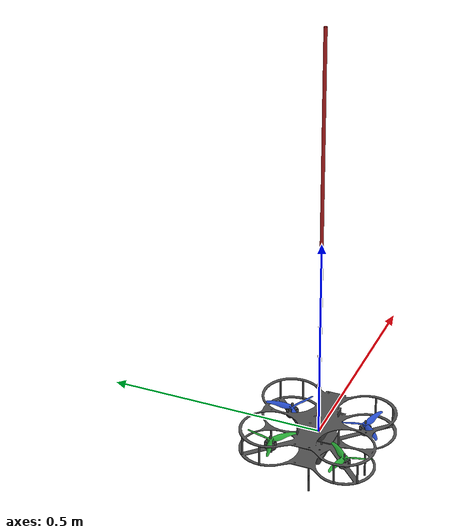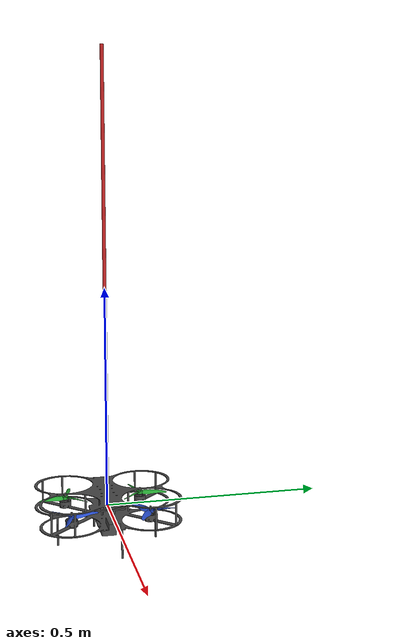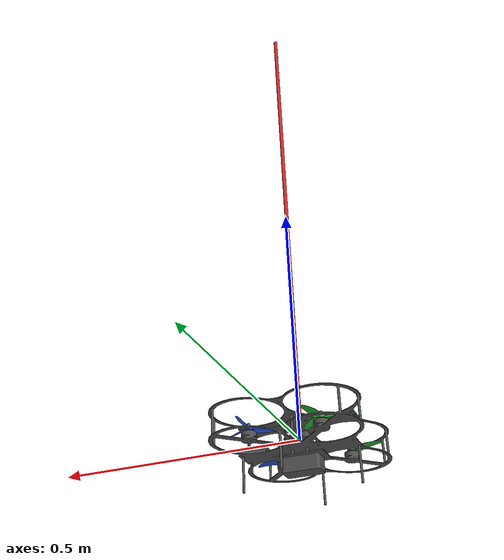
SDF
<sdf version='1.7'>
  <model name='danaus12_old'>
    <link name='base_link'>
      <inertial>
        <pose>0.003017 6e-06 0.024946 0 0 0</pose>
        <mass>0.67634104</mass>
        <inertia>
          <ixx>0.00320868</ixx>
          <ixy>0.00011707</ixy>
          <ixz>0.00004899</ixz>
          <iyy>0.00288707</iyy>
          <iyz>0.00006456</iyz>
          <izz>0.00495141</izz>
        </inertia>
      </inertial>
      <collision name='base_link_collision'>
        <pose>0 0 0 0 0 0</pose>
        <geometry>
          <box>
            <size>0.28 0.32 0.12</size>
          </box>
        </geometry>
        <surface>
          <contact>
            <ode>
              <min_depth>0.001</min_depth>
              <max_vel>0</max_vel>
            </ode>
          </contact>
          <friction>
            <ode/>
          </friction>
        </surface>
      </collision>
      <visual name='base_link_inertia_visual'>
        <pose>0 0 0 0 0 0</pose>
        <geometry>
          <mesh>
            <scale>1 1 1</scale>
            <uri>model://danaus12_old/meshes/base_link.stl</uri>
          </mesh>
        </geometry>
        <material>
          <script>
            <name>Gazebo/DarkGrey</name>
            <uri>file://media/materials/scripts/gazebo.material</uri>
          </script>
        </material>
      </visual>
      <gravity>1</gravity>
      <velocity_decay/>
    </link>

    <joint name='pendulum_joint' type='universal'>
      <pose relative_to='base_link'>-0.001995 0.000135 0.031659 0 0 0</pose>   <!-- NEEDED to set joint to be at CoM of drone -->
      <parent>base_link</parent>
      <child>pendulum</child>
      <axis1>
        <xyz>1 0 0</xyz>
        <limit>
          <lower>-3.14</lower>
          <upper>3.14</upper>
        </limit>
        <dynamics>
          <spring_reference>0</spring_reference>
          <spring_stiffness>0</spring_stiffness>
        </dynamics>
      </axis1>
      <axis2>
        <xyz>0 1 0</xyz>
        <limit>
          <lower>-3.14</lower>
          <upper>3.14</upper>
        </limit>
        <dynamics>
          <spring_reference>0</spring_reference>
          <spring_stiffness>0</spring_stiffness>
        </dynamics>
      </axis2>
     </joint>
    <link name='pendulum'>
      <pose>-0.001995 0.000135 0.531659 0 0 0</pose>  <!-- Needed to get CoM of pendulum link state -->
      <inertial>
        <!-- This works -->
        <pose> 0 0 0 0 0 0</pose>   <!-- This is about the pose of the link itself. -->
        <mass>0.03133884</mass>
        <inertia>
          <ixx>0.00261178</ixx>
          <ixy>0</ixy>
          <ixz>0</ixz>
          <iyy>0.00261178</iyy>
          <iyz>0</iyz>
          <izz>0.00000042</izz>
        </inertia>
      </inertial>
      <collision name='pendulum_collision'>
        <pose>0 0 0 0 0 0</pose>
        <geometry>
          <mesh>
            <scale>1 1 1</scale>
            <uri>model://danaus12_old/meshes/penulum.stl</uri>
          </mesh>
        </geometry>
        <surface>
          <contact>
            <ode/>
          </contact>
          <friction>
            <ode/>
          </friction>
        </surface>
      </collision>
      <visual name='pendulum_visual'>
        <pose>0 0 0 0 0 0</pose>
        <geometry>
          <mesh>
            <scale>1 1 1</scale>
            <uri>model://danaus12_old/meshes/penulum.stl</uri>
          </mesh>
        </geometry>
        <material>
          <script>
            <name>Gazebo/Red</name>
            <uri>file://media/materials/scripts/gazebo.material</uri>
          </script>
        </material>
      </visual>
      <gravity>0</gravity>
      <velocity_decay/>
    </link>

    <joint name='/imu_joint' type='revolute'>
      <pose relative_to='base_link'>0 0 0 0 0 0</pose>
      <child>/imu_link</child>
      <parent>base_link</parent>
      <axis>
        <xyz>1 0 0</xyz>
        <limit>
          <lower>0</lower>
          <upper>0</upper>
          <effort>0</effort>
          <velocity>0</velocity>
        </limit>
        <dynamics>
          <spring_reference>0</spring_reference>
          <spring_stiffness>0</spring_stiffness>
        </dynamics>
        <use_parent_model_frame>1</use_parent_model_frame>
      </axis>
    </joint>
    <link name='/imu_link'>
      <pose relative_to='/imu_joint'>0 0 0 0 0 0</pose>
      <inertial>
        <pose>0 0 0 0 0 0</pose>
        <mass>0.015</mass>imu
        <inertia>
          <ixx>1e-05</ixx>
          <ixy>0</ixy>
          <ixz>0</ixz>
          <iyy>1e-05</iyy>
          <iyz>0</iyz>
          <izz>1e-05</izz>
        </inertia>
      </inertial>
    </link>
    <joint name='rotor_0_joint' type='revolute'>
      <pose relative_to='base_link'>0.063592 -0.088805 0.003519 0 0 0</pose>
      <parent>base_link</parent>
      <child>rotor_0</child>
      <axis>
        <xyz>0 0 1</xyz>
        <limit>
          <lower>-1e+16</lower>
          <upper>1e+16</upper>
        </limit>
        <dynamics>
          <spring_reference>0</spring_reference>
          <spring_stiffness>0</spring_stiffness>
        </dynamics>
      </axis>
    </joint>
    <link name='rotor_0'>
      <pose relative_to='rotor_0_joint'>0 0 0 0 0 0</pose>
      <inertial>
        <pose>0 -3e-06 -0.001827 0 0 0</pose>
        <mass>0.0032761</mass>
        <inertia>
          <ixx>1.0527e-06</ixx>
          <ixy>-2.4429e-10</ixy>
          <ixz>-1.7374e-11</ixz>
          <iyy>1.0527e-06</iyy>
          <iyz>1.5733e-11</iyz>
          <izz>2.0815e-06</izz>
        </inertia>
      </inertial>
      <collision name='rotor_0_collision'>
        <pose>0 0 0 0 0 0</pose>
        <geometry>
          <cylinder>
            <length>0.005</length>
            <radius>0.064</radius>
          </cylinder>
        </geometry>
        <surface>
          <contact>
            <ode/>
          </contact>
          <friction>
            <ode/>
          </friction>
        </surface>
      </collision>
      <visual name='rotor_0_visual'>
        <pose>0 0 0 0 0 0</pose>
        <geometry>
          <mesh>
            <scale>1 1 1</scale>
            <uri>model://danaus12_old/meshes/rotor_0.stl</uri>
          </mesh>
        </geometry>
        <material>
          <script>
            <name>Gazebo/Blue</name>
            <uri>file://media/materials/scripts/gazebo.material</uri>
          </script>
        </material>
      </visual>
    </link>
    <joint name='rotor_1_joint' type='revolute'>
      <pose relative_to='base_link'>-0.071008 0.088795 0.003519 0 0 0</pose>
      <parent>base_link</parent>
      <child>rotor_1</child>
      <axis>
        <xyz>0 0 1</xyz>
        <limit>
          <lower>-1e+16</lower>
          <upper>1e+16</upper>
        </limit>
        <dynamics>
          <spring_reference>0</spring_reference>
          <spring_stiffness>0</spring_stiffness>
        </dynamics>
      </axis>
    </joint>
    <link name='rotor_1'>
      <pose relative_to='rotor_1_joint'>0 0 0 0 0 0</pose>
      <inertial>
        <pose>3e-06 3e-06 -0.001827 0 0 0</pose>
        <mass>0.0032761</mass>
        <inertia>
          <ixx>1.053e-06</ixx>
          <ixy>1.0257e-10</ixy>
          <ixz>-1.0673e-11</ixz>
          <iyy>1.0527e-06</iyy>
          <iyz>-8.4164e-12</iyz>
          <izz>2.0817e-06</izz>
        </inertia>
      </inertial>
      <collision name='rotor_1_collision'>
        <pose>0 0 0 0 0 0</pose>
        <geometry>
          <cylinder>
            <length>0.005</length>
            <radius>0.064</radius>
          </cylinder>
        </geometry>
        <surface>
          <contact>
            <ode/>
          </contact>
          <friction>
            <ode/>
          </friction>
        </surface>
      </collision>
      <visual name='rotor_1_visual'>
        <pose>0 0 0 0 0 0</pose>
        <geometry>
          <mesh>
            <scale>1 1 1</scale>
            <uri>model://danaus12_old/meshes/rotor_1.stl</uri>
          </mesh>
        </geometry>
        <material>
          <script>
            <name>Gazebo/Green</name>
            <uri>file://media/materials/scripts/gazebo.material</uri>
          </script>
        </material>
      </visual>
      <gravity>1</gravity>
      <velocity_decay/>
    </link>
    <joint name='rotor_2_joint' type='revolute'>
      <pose relative_to='base_link'>0.063592 0.088795 0.003519 0 0 0</pose>
      <parent>base_link</parent>
      <child>rotor_2</child>
      <axis>
        <xyz>0 0 1</xyz>
        <limit>
          <lower>-1e+16</lower>
          <upper>1e+16</upper>
        </limit>
        <dynamics>
          <spring_reference>0</spring_reference>
          <spring_stiffness>0</spring_stiffness>
        </dynamics>
      </axis>
    </joint>
    <link name='rotor_2'>
      <pose relative_to='rotor_2_joint'>0 0 0 0 0 0</pose>
      <inertial>
        <pose>7e-06 7e-06 -0.001826 0 0 0</pose>
        <mass>0.0032742</mass>
        <inertia>
          <ixx>1.0522e-06</ixx>
          <ixy>2.8174e-10</ixy>
          <ixz>5.4977e-11</ixz>
          <iyy>1.052e-06</iyy>
          <iyz>2.4597e-11</iyz>
          <izz>2.0804e-06</izz>
        </inertia>
      </inertial>
      <collision name='rotor_2_collision'>
        <pose>0 0 0 0 0 0</pose>
        <geometry>
          <cylinder>
            <length>0.005</length>
            <radius>0.064</radius>
          </cylinder>
        </geometry>
        <surface>
          <contact>
            <ode/>
          </contact>
          <friction>
            <ode/>
          </friction>
        </surface>
      </collision>
      <visual name='rotor_2_visual'>
        <pose>0 0 0 0 0 0</pose>
        <geometry>
          <mesh>
            <scale>1 1 1</scale>
            <uri>model://danaus12_old/meshes/rotor_2.stl</uri>
          </mesh>
        </geometry>
        <material>
          <script>
            <name>Gazebo/Blue</name>
            <uri>file://media/materials/scripts/gazebo.material</uri>
          </script>
        </material>
      </visual>
      <gravity>1</gravity>
      <velocity_decay/>
    </link>
    <joint name='rotor_3_joint' type='revolute'>
      <pose relative_to='base_link'>-0.071008 -0.088805 0.003519 0 0 0</pose>
      <parent>base_link</parent>
      <child>rotor_3</child>
      <axis>
        <xyz>0 0 1</xyz>
        <limit>
          <lower>-1e+16</lower>
          <upper>1e+16</upper>
        </limit>
        <dynamics>
          <spring_reference>0</spring_reference>
          <spring_stiffness>0</spring_stiffness>
        </dynamics>
      </axis>
    </joint>
    <link name='rotor_3'>
      <pose relative_to='rotor_3_joint'>0 0 0 0 0 0</pose>
      <inertial>
        <pose>-7e-06 5e-06 -0.001825 0 0 0</pose>
        <mass>0.0032734</mass>
        <inertia>
          <ixx>1.0517e-06</ixx>
          <ixy>-5.171e-11</ixy>
          <ixz>-3.874e-11</ixz>
          <iyy>1.0522e-06</iyy>
          <iyz>4.5399e-11</iyz>
          <izz>2.0801e-06</izz>
        </inertia>
      </inertial>
      <collision name='rotor_3_collision'>
        <pose>0 0 0 0 0 0</pose>
        <geometry>
          <cylinder>
            <length>0.005</length>
            <radius>0.064</radius>
          </cylinder>
        </geometry>
        <surface>
          <contact>
            <ode/>
          </contact>
          <friction>
            <ode/>
          </friction>
        </surface>
      </collision>
      <visual name='rotor_3_visual'>
        <pose>0 0 0 0 0 0</pose>
        <geometry>
          <mesh>
            <scale>1 1 1</scale>
            <uri>model://danaus12_old/meshes/rotor_3.stl</uri>
          </mesh>
        </geometry>
        <material>
          <script>
            <name>Gazebo/Green</name>
            <uri>file://media/materials/scripts/gazebo.material</uri>
          </script>
        </material>
      </visual>
      <gravity>1</gravity>
      <velocity_decay/>
    </link>
    <plugin name='rosbag' filename='libgazebo_multirotor_base_plugin.so'>
      <robotNamespace/>
      <linkName>base_link</linkName>
      <rotorVelocitySlowdownSim>10</rotorVelocitySlowdownSim>
    </plugin>
    <plugin name='front_right_motor_model' filename='libgazebo_motor_model.so'>
      <robotNamespace/>
      <jointName>rotor_0_joint</jointName>
      <linkName>rotor_0</linkName>
      <turningDirection>ccw</turningDirection>
      <timeConstantUp>0.0125</timeConstantUp>
      <timeConstantDown>0.025</timeConstantDown>
      <maxRotVelocity>1100</maxRotVelocity>
      <motorConstant>5.84e-06</motorConstant>
      <momentConstant>0.06</momentConstant>
      <commandSubTopic>/gazebo/command/motor_speed</commandSubTopic>
      <motorNumber>0</motorNumber>
      <rotorDragCoefficient>0.000175</rotorDragCoefficient>
      <rollingMomentCoefficient>1e-06</rollingMomentCoefficient>
      <motorSpeedPubTopic>/motor_speed/0</motorSpeedPubTopic>
      <rotorVelocitySlowdownSim>10</rotorVelocitySlowdownSim>
    </plugin>
    <plugin name='back_left_motor_model' filename='libgazebo_motor_model.so'>
      <robotNamespace/>
      <jointName>rotor_1_joint</jointName>
      <linkName>rotor_1</linkName>
      <turningDirection>ccw</turningDirection>
      <timeConstantUp>0.0125</timeConstantUp>
      <timeConstantDown>0.025</timeConstantDown>
      <maxRotVelocity>1100</maxRotVelocity>
      <motorConstant>5.84e-06</motorConstant>
      <momentConstant>0.06</momentConstant>
      <commandSubTopic>/gazebo/command/motor_speed</commandSubTopic>
      <motorNumber>1</motorNumber>
      <rotorDragCoefficient>0.000175</rotorDragCoefficient>
      <rollingMomentCoefficient>1e-06</rollingMomentCoefficient>
      <motorSpeedPubTopic>/motor_speed/1</motorSpeedPubTopic>
      <rotorVelocitySlowdownSim>10</rotorVelocitySlowdownSim>
    </plugin>
    <plugin name='front_left_motor_model' filename='libgazebo_motor_model.so'>
      <robotNamespace/>
      <jointName>rotor_2_joint</jointName>
      <linkName>rotor_2</linkName>
      <turningDirection>cw</turningDirection>
      <timeConstantUp>0.0125</timeConstantUp>
      <timeConstantDown>0.025</timeConstantDown>
      <maxRotVelocity>1100</maxRotVelocity>
      <motorConstant>5.84e-06</motorConstant>
      <momentConstant>0.06</momentConstant>
      <commandSubTopic>/gazebo/command/motor_speed</commandSubTopic>
      <motorNumber>2</motorNumber>
      <rotorDragCoefficient>0.000175</rotorDragCoefficient>
      <rollingMomentCoefficient>1e-06</rollingMomentCoefficient>
      <motorSpeedPubTopic>/motor_speed/2</motorSpeedPubTopic>
      <rotorVelocitySlowdownSim>10</rotorVelocitySlowdownSim>
    </plugin>
    <plugin name='back_right_motor_model' filename='libgazebo_motor_model.so'>
      <robotNamespace/>
      <jointName>rotor_3_joint</jointName>
      <linkName>rotor_3</linkName>
      <turningDirection>cw</turningDirection>
      <timeConstantUp>0.0125</timeConstantUp>
      <timeConstantDown>0.025</timeConstantDown>
      <maxRotVelocity>1100</maxRotVelocity>
      <motorConstant>5.84e-06</motorConstant>
      <momentConstant>0.06</momentConstant>
      <commandSubTopic>/gazebo/command/motor_speed</commandSubTopic>
      <motorNumber>3</motorNumber>
      <rotorDragCoefficient>0.000175</rotorDragCoefficient>
      <rollingMomentCoefficient>1e-06</rollingMomentCoefficient>
      <motorSpeedPubTopic>/motor_speed/3</motorSpeedPubTopic>
      <rotorVelocitySlowdownSim>10</rotorVelocitySlowdownSim>
    </plugin>
    <include>
      <uri>model://gps</uri>
      <pose>0 0 0 0 0 0</pose>
      <name>gps0</name>
    </include>
    <joint name='gps0_joint' type='fixed'>
      <child>gps0::link</child>
      <parent>base_link</parent>
    </joint>
    <plugin name='groundtruth_plugin' filename='libgazebo_groundtruth_plugin.so'>
      <robotNamespace/>
    </plugin>
    <plugin name='magnetometer_plugin' filename='libgazebo_magnetometer_plugin.so'>
      <robotNamespace/>
      <pubRate>100</pubRate>
      <noiseDensity>0.0004</noiseDensity>
      <randomWalk>6.4e-06</randomWalk>
      <biasCorrelationTime>600</biasCorrelationTime>
      <magTopic>/mag</magTopic>
    </plugin>
    <plugin name='barometer_plugin' filename='libgazebo_barometer_plugin.so'>
      <robotNamespace/>
      <pubRate>50</pubRate>
      <baroTopic>/baro</baroTopic>
      <baroDriftPaPerSec>0</baroDriftPaPerSec>
    </plugin>
    <plugin name='mavlink_interface' filename='libgazebo_mavlink_interface.so'>
      <robotNamespace/>
      <imuSubTopic>/imu</imuSubTopic>
      <magSubTopic>/mag</magSubTopic>
      <baroSubTopic>/baro</baroSubTopic>
      <mavlink_addr>INADDR_ANY</mavlink_addr>
      <mavlink_tcp_port>4560</mavlink_tcp_port>
      <mavlink_udp_port>14560</mavlink_udp_port>
      <serialEnabled>0</serialEnabled>
      <serialDevice>/dev/ttyACM0</serialDevice>
      <baudRate>921600</baudRate>
      <qgc_addr>INADDR_ANY</qgc_addr>
      <qgc_udp_port>14550</qgc_udp_port>
      <sdk_addr>INADDR_ANY</sdk_addr>
      <sdk_udp_port>14540</sdk_udp_port>
      <hil_mode>0</hil_mode>
      <hil_state_level>0</hil_state_level>
      <send_vision_estimation>0</send_vision_estimation>
      <send_odometry>1</send_odometry>
      <enable_lockstep>1</enable_lockstep>
      <use_tcp>1</use_tcp>
      <motorSpeedCommandPubTopic>/gazebo/command/motor_speed</motorSpeedCommandPubTopic>
      <control_channels>
        <channel name='rotor1'>
          <input_index>0</input_index>
          <input_offset>0</input_offset>
          <input_scaling>1000</input_scaling>
          <zero_position_disarmed>0</zero_position_disarmed>
          <zero_position_armed>100</zero_position_armed>
          <joint_control_type>velocity</joint_control_type>
        </channel>
        <channel name='rotor2'>
          <input_index>1</input_index>
          <input_offset>0</input_offset>
          <input_scaling>1000</input_scaling>
          <zero_position_disarmed>0</zero_position_disarmed>
          <zero_position_armed>100</zero_position_armed>
          <joint_control_type>velocity</joint_control_type>
        </channel>
        <channel name='rotor3'>
          <input_index>2</input_index>
          <input_offset>0</input_offset>
          <input_scaling>1000</input_scaling>
          <zero_position_disarmed>0</zero_position_disarmed>
          <zero_position_armed>100</zero_position_armed>
          <joint_control_type>velocity</joint_control_type>
        </channel>
        <channel name='rotor4'>
          <input_index>3</input_index>
          <input_offset>0</input_offset>
          <input_scaling>1000</input_scaling>
          <zero_position_disarmed>0</zero_position_disarmed>
          <zero_position_armed>100</zero_position_armed>
          <joint_control_type>velocity</joint_control_type>
        </channel>
      </control_channels>
    </plugin>
    <static>0</static>
    <plugin name='rotors_gazebo_imu_plugin' filename='libgazebo_imu_plugin.so'>
      <robotNamespace/>
      <linkName>/imu_link</linkName>
      <imuTopic>/imu</imuTopic>
      <gyroscopeNoiseDensity>0</gyroscopeNoiseDensity>
      <gyroscopeRandomWalk>0</gyroscopeRandomWalk>
      <gyroscopeBiasCorrelationTime>1000.0</gyroscopeBiasCorrelationTime>
      <gyroscopeTurnOnBiasSigma>0</gyroscopeTurnOnBiasSigma>
      <accelerometerNoiseDensity>0</accelerometerNoiseDensity>
      <accelerometerRandomWalk>0</accelerometerRandomWalk>
      <accelerometerBiasCorrelationTime>300.0</accelerometerBiasCorrelationTime>
      <accelerometerTurnOnBiasSigma>0</accelerometerTurnOnBiasSigma>
    </plugin>
  </model>
</sdf>

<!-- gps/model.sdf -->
<sdf version="1.6">
  <model name="gps">
    <link name="link">
      <pose>0 0 0 0 0 0</pose>
      <inertial>
        <pose>0 0 0 0 0 0</pose>
        <mass>0.015</mass>
        <inertia>
          <ixx>1e-05</ixx>
          <ixy>0</ixy>
          <ixz>0</ixz>
          <iyy>1e-05</iyy>
          <iyz>0</iyz>
          <izz>1e-05</izz>
        </inertia>
      </inertial>
      <visual name="visual">
        <geometry>
          <cylinder>
            <radius>0.01</radius>
            <length>0.002</length>
          </cylinder>
        </geometry>
        <material>
          <script>
            <name>Gazebo/Black</name>
            <uri>file://usr/share/gz/gz-sim8/media/gazebo.material</uri>
          </script>
        </material>
      </visual>
      <sensor name="gps" type="gps">
        <pose>0 0 0 0 0 0</pose>
        <update_rate>5.0</update_rate>
        <always_on>true</always_on>
        <visualize>false</visualize>
        <!-- GpsSensor noise currently not used -->
        <plugin name="gps_plugin" filename="libgazebo_gps_plugin.so">
          <robotNamespace></robotNamespace>
          <gpsNoise>true</gpsNoise>
          <gpsXYRandomWalk>2.0</gpsXYRandomWalk>
          <gpsZRandomWalk>4.0</gpsZRandomWalk>
          <gpsXYNoiseDensity>2.0e-4</gpsXYNoiseDensity>
          <gpsZNoiseDensity>4.0e-4</gpsZNoiseDensity>
          <gpsVXYNoiseDensity>0.2</gpsVXYNoiseDensity>
          <gpsVZNoiseDensity>0.4</gpsVZNoiseDensity>
        </plugin>
      </sensor>
    </link>
  </model>
</sdf>
